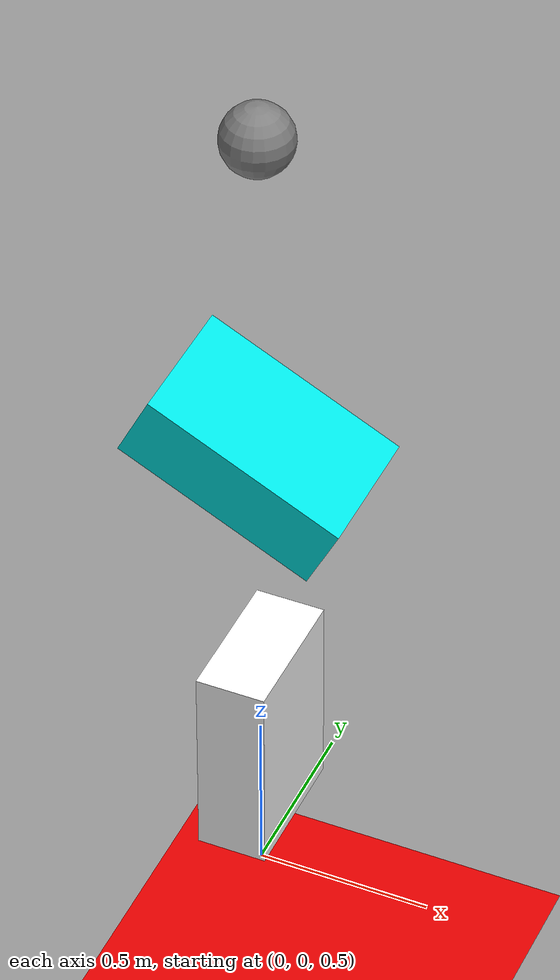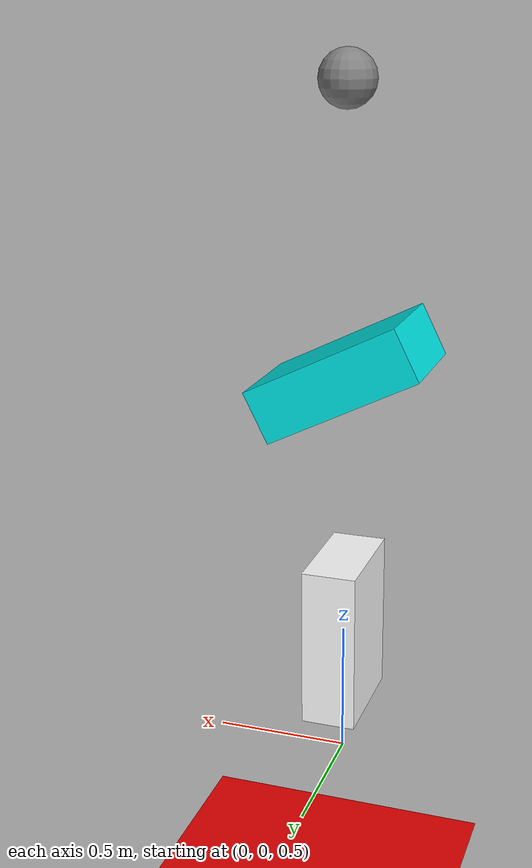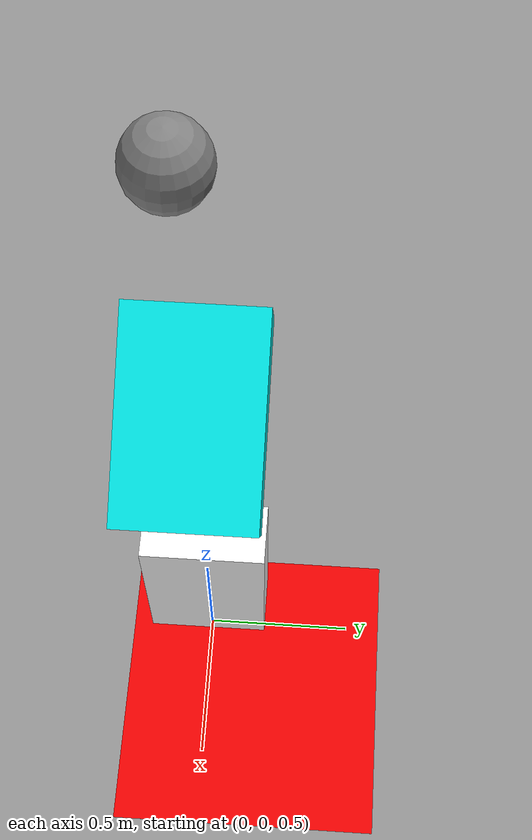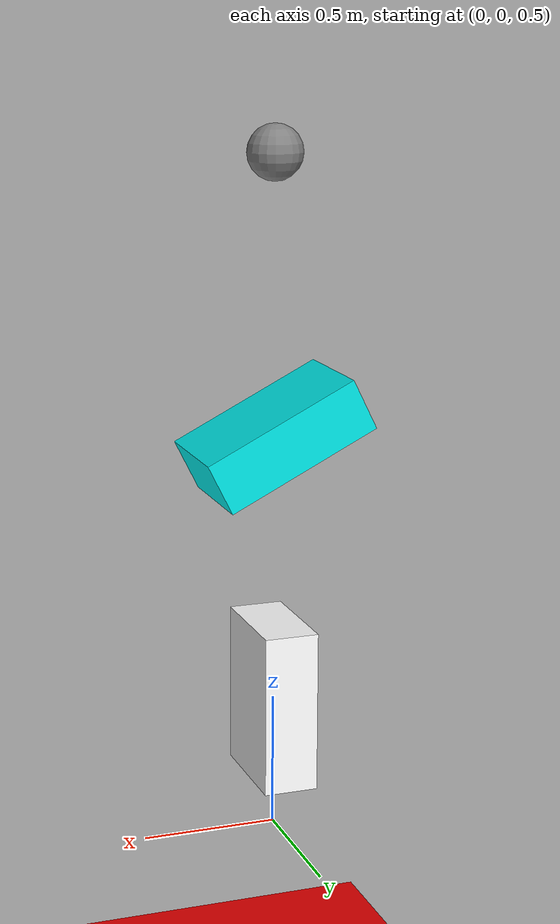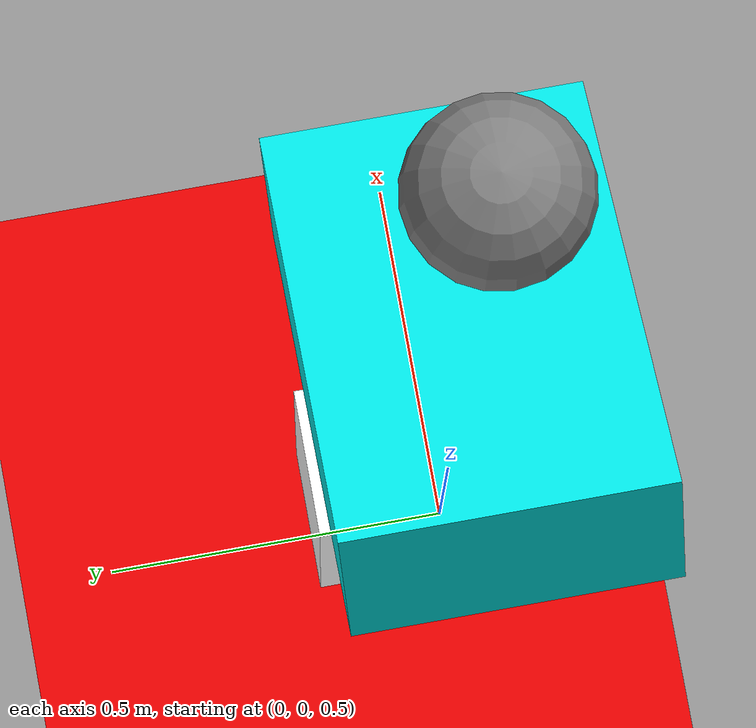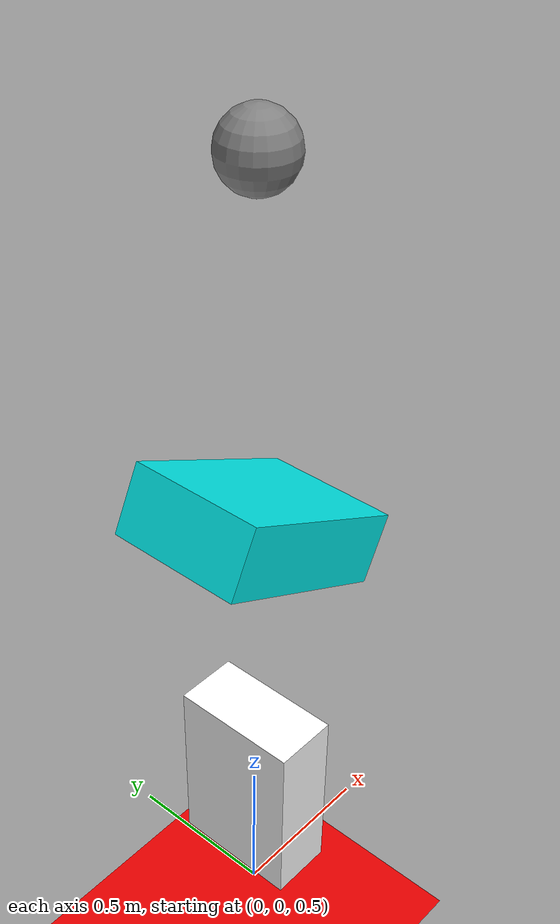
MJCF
<mujoco>
    <!-- option: 全局仿真选项 -->
    <!-- gravity: 重力加速度 (x=0, y=0, z=-0.1 m/s²) -->
    <option gravity="0 0 -9.81"/>

    <!-- compiler: XML 编译器设置 -->
    <!-- angle: 角度单位使用弧度 (而非默认的角度) -->
    <compiler angle="radian"/>
    <visual>
        <headlight ambient="0.1 0.1 0.1"/>
    </visual>

    <asset>
        <material name="white" rgba="1 1 1 1"/>
    </asset>

    <!-- worldbody: 定义物理世界中的所有物体 -->
    <worldbody>
        <!--
            light: 场景光源
            diffuse: 漫反射颜色 (RGB=0.5, 0.5, 0.5 灰白色)
            pos:    光源位置 (x=0, y=0, z=3 米，在物体上方)
            dir:    光照方向 (沿 -z 轴向下照射)
        -->
        <light diffuse=".5 .5 .5" pos="0 0 3" dir="0 0 -1"/>

        <!--
            geom: 几何体（同时定义视觉外观和碰撞体积）
            type="plane": 平面地面
            size: 平面半尺寸 (x=1, y=1, z=0.5 米 → 全尺寸 2×2×1)
            rgba: 颜色 (红=0.9, 绿=0, 蓝=0, alpha=1=不透明) → 红色地面
        -->
        <geom type="plane" size="1 1 0.5" rgba=".9 0 0 1"/>

        <!--
            body: 刚体（具有质量、位置、姿态，可内嵌关节和几何体）
            pos="0 0 1": 初始位置在 z=1 米高处
            euler="0 90 60": 初始欧拉角 (roll=0, pitch=90°, yaw=60°)
        -->
        <body pos="0 0 1" euler="0 0 0">
            <!--
                joint: 关节
                type="free": 自由关节（6 DoF，可沿 x/y/z 平移和绕三轴旋转，无约束）
            -->
            <joint type="free"/>

            <!--
                inertial: 惯性特性（质量分布）
                pos: 质心位置（在 body 本地坐标系中，0,0,0=与 body origin 重合）
                mass: 质量 (1 kg)
            -->
            <inertial pos="0 0 0" mass="1" diaginertia="0.01 0.01 0.01"/>

            <geom type="box" size=".1 .2 .3" material="white"/>
        </body>

        <!--
            body: 刚体（具有质量、位置、姿态，可内嵌关节和几何体）
            pos="0 0 1": 初始位置在 z=1 米高处
            euler="0 90 60": 初始欧拉角 (roll=0, pitch=90°, yaw=60°)
        -->
        <body pos="0 0 2" euler="0 90 0">
            <!--
                joint: 关节
                type="free": 自由关节（6 DoF，可沿 x/y/z 平移和绕三轴旋转，无约束）
            -->
            <joint type="free"/>

            <!--
                inertial: 惯性特性（质量分布）
                pos: 质心位置（在 body 本地坐标系中，0,0,0=与 body origin 重合）
                mass: 质量 (1 kg)
            -->
            <inertial pos="0 0 0" mass="1" diaginertia="0.01 0.01 0.01"/>

            <geom type="box" size=".1 .2 .3" rgba="0 .9 .9 1"/>
        </body>

        <!--
            body: 刚体（具有质量、位置、姿态，可内嵌关节和几何体）
            pos="0 0 1": 初始位置在 z=1 米高处
            euler="0 90 60": 初始欧拉角 (roll=0, pitch=90°, yaw=60°)
        -->
        <body pos="0 0 3" euler="0 0 0">
            <!--
                joint: 关节
                type="free": 自由关节（6 DoF，可沿 x/y/z 平移和绕三轴旋转，无约束）
            -->
            <joint type="free"/>

            <!--
                inertial: 惯性特性（质量分布）
                pos: 质心位置（在 body 本地坐标系中，0,0,0=与 body origin 重合）
                mass: 质量 (1 kg)
            -->
            <inertial pos="0 0 0" mass="1" diaginertia="0.01 0.01 0.01"/>

            <geom type="sphere" size=".1" rgba=".5 .5 .5 1"/>
        </body>
    </worldbody>
</mujoco>
